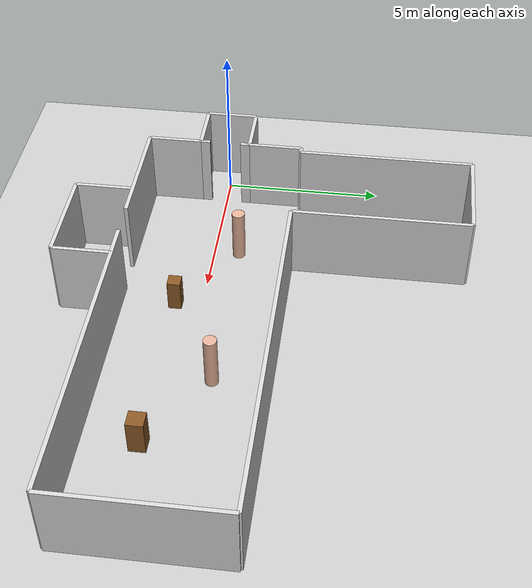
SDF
<?xml version="1.0" ?>
<sdf version="1.6">
  <world name="kku_f1">
    <include><uri>model://sun</uri></include>
    <include><uri>model://ground_plane</uri></include>
    <physics name="default_physics" default="0" type="ode">
      <max_step_size>0.001</max_step_size>
      <real_time_factor>1.0</real_time_factor>
      <real_time_update_rate>1000</real_time_update_rate>
    </physics>
    <scene>
      <ambient>0.4 0.4 0.4 1</ambient>
      <background>0.7 0.7 0.7 1</background>
      <shadows>true</shadows>
    </scene>
    <!-- 동적 장애물(보행자)을 set_entity_state 로 위치제어하기 위한 플러그인 -->
    <plugin name="gazebo_ros_state" filename="libgazebo_ros_state.so">
      <ros><namespace>/gazebo</namespace></ros>
      <update_rate>50.0</update_rate>
    </plugin>
    <model name="kku_f1_building">
      <static>true</static>
      <link name="walls">
        <collision name="f1_elev_n">
          <pose>0 0.8 1.2 0 0 0</pose>
          <geometry><box><size>1.6 0.12 2.4</size></box></geometry>
        </collision>
        <visual name="f1_elev_n_v">
          <pose>0 0.8 1.2 0 0 0</pose>
          <geometry><box><size>1.6 0.12 2.4</size></box></geometry>
          <material><ambient>0.7 0.7 0.7 1</ambient><diffuse>0.85 0.85 0.85 1</diffuse></material>
        </visual>
        <collision name="f1_elev_s">
          <pose>0 -0.8 1.2 0 0 0</pose>
          <geometry><box><size>1.6 0.12 2.4</size></box></geometry>
        </collision>
        <visual name="f1_elev_s_v">
          <pose>0 -0.8 1.2 0 0 0</pose>
          <geometry><box><size>1.6 0.12 2.4</size></box></geometry>
          <material><ambient>0.7 0.7 0.7 1</ambient><diffuse>0.85 0.85 0.85 1</diffuse></material>
        </visual>
        <collision name="f1_elev_w">
          <pose>-0.8 0 1.2 0 0 0</pose>
          <geometry><box><size>0.12 1.6 2.4</size></box></geometry>
        </collision>
        <visual name="f1_elev_w_v">
          <pose>-0.8 0 1.2 0 0 0</pose>
          <geometry><box><size>0.12 1.6 2.4</size></box></geometry>
          <material><ambient>0.7 0.7 0.7 1</ambient><diffuse>0.85 0.85 0.85 1</diffuse></material>
        </visual>
        <collision name="f1_elev_e_s">
          <pose>0.8 -0.65 1.2 0 0 0</pose>
          <geometry><box><size>0.12 0.3 2.4</size></box></geometry>
        </collision>
        <visual name="f1_elev_e_s_v">
          <pose>0.8 -0.65 1.2 0 0 0</pose>
          <geometry><box><size>0.12 0.3 2.4</size></box></geometry>
          <material><ambient>0.7 0.7 0.7 1</ambient><diffuse>0.85 0.85 0.85 1</diffuse></material>
        </visual>
        <collision name="f1_elev_e_n">
          <pose>0.8 0.65 1.2 0 0 0</pose>
          <geometry><box><size>0.12 0.3 2.4</size></box></geometry>
        </collision>
        <visual name="f1_elev_e_n_v">
          <pose>0.8 0.65 1.2 0 0 0</pose>
          <geometry><box><size>0.12 0.3 2.4</size></box></geometry>
          <material><ambient>0.7 0.7 0.7 1</ambient><diffuse>0.85 0.85 0.85 1</diffuse></material>
        </visual>
        <collision name="f1_shoulder_n">
          <pose>0.8 1.65 1.2 0 0 0</pose>
          <geometry><box><size>0.12 1.7 2.4</size></box></geometry>
        </collision>
        <visual name="f1_shoulder_n_v">
          <pose>0.8 1.65 1.2 0 0 0</pose>
          <geometry><box><size>0.12 1.7 2.4</size></box></geometry>
          <material><ambient>0.7 0.7 0.7 1</ambient><diffuse>0.85 0.85 0.85 1</diffuse></material>
        </visual>
        <collision name="f1_shoulder_s">
          <pose>0.8 -1.65 1.2 0 0 0</pose>
          <geometry><box><size>0.12 1.7 2.4</size></box></geometry>
        </collision>
        <visual name="f1_shoulder_s_v">
          <pose>0.8 -1.65 1.2 0 0 0</pose>
          <geometry><box><size>0.12 1.7 2.4</size></box></geometry>
          <material><ambient>0.7 0.7 0.7 1</ambient><diffuse>0.85 0.85 0.85 1</diffuse></material>
        </visual>
        <collision name="f1_rc_n_w">
          <pose>0.9 2.5 1.2 0 0 0</pose>
          <geometry><box><size>0.2 0.12 2.4</size></box></geometry>
        </collision>
        <visual name="f1_rc_n_w_v">
          <pose>0.9 2.5 1.2 0 0 0</pose>
          <geometry><box><size>0.2 0.12 2.4</size></box></geometry>
          <material><ambient>0.7 0.7 0.7 1</ambient><diffuse>0.85 0.85 0.85 1</diffuse></material>
        </visual>
        <collision name="f1_rc_n_e">
          <pose>9.5 2.5 1.2 0 0 0</pose>
          <geometry><box><size>11 0.12 2.4</size></box></geometry>
        </collision>
        <visual name="f1_rc_n_e_v">
          <pose>9.5 2.5 1.2 0 0 0</pose>
          <geometry><box><size>11 0.12 2.4</size></box></geometry>
          <material><ambient>0.7 0.7 0.7 1</ambient><diffuse>0.85 0.85 0.85 1</diffuse></material>
        </visual>
        <collision name="f1_rc_s_w">
          <pose>2.65 -2.5 1.2 0 0 0</pose>
          <geometry><box><size>3.7 0.12 2.4</size></box></geometry>
        </collision>
        <visual name="f1_rc_s_w_v">
          <pose>2.65 -2.5 1.2 0 0 0</pose>
          <geometry><box><size>3.7 0.12 2.4</size></box></geometry>
          <material><ambient>0.7 0.7 0.7 1</ambient><diffuse>0.85 0.85 0.85 1</diffuse></material>
        </visual>
        <collision name="f1_rc_s_e">
          <pose>10.25 -2.5 1.2 0 0 0</pose>
          <geometry><box><size>9.5 0.12 2.4</size></box></geometry>
        </collision>
        <visual name="f1_rc_s_e_v">
          <pose>10.25 -2.5 1.2 0 0 0</pose>
          <geometry><box><size>9.5 0.12 2.4</size></box></geometry>
          <material><ambient>0.7 0.7 0.7 1</ambient><diffuse>0.85 0.85 0.85 1</diffuse></material>
        </visual>
        <collision name="f1_rc_end">
          <pose>15 0 1.2 0 0 0</pose>
          <geometry><box><size>0.12 5 2.4</size></box></geometry>
        </collision>
        <visual name="f1_rc_end_v">
          <pose>15 0 1.2 0 0 0</pose>
          <geometry><box><size>0.12 5 2.4</size></box></geometry>
          <material><ambient>0.7 0.7 0.7 1</ambient><diffuse>0.85 0.85 0.85 1</diffuse></material>
        </visual>
        <collision name="f1_bc_w">
          <pose>1 5.25 1.2 0 0 0</pose>
          <geometry><box><size>0.12 5.5 2.4</size></box></geometry>
        </collision>
        <visual name="f1_bc_w_v">
          <pose>1 5.25 1.2 0 0 0</pose>
          <geometry><box><size>0.12 5.5 2.4</size></box></geometry>
          <material><ambient>0.7 0.7 0.7 1</ambient><diffuse>0.85 0.85 0.85 1</diffuse></material>
        </visual>
        <collision name="f1_bc_e">
          <pose>4 5.25 1.2 0 0 0</pose>
          <geometry><box><size>0.12 5.5 2.4</size></box></geometry>
        </collision>
        <visual name="f1_bc_e_v">
          <pose>4 5.25 1.2 0 0 0</pose>
          <geometry><box><size>0.12 5.5 2.4</size></box></geometry>
          <material><ambient>0.7 0.7 0.7 1</ambient><diffuse>0.85 0.85 0.85 1</diffuse></material>
        </visual>
        <collision name="f1_bc_end">
          <pose>2.5 8 1.2 0 0 0</pose>
          <geometry><box><size>3 0.12 2.4</size></box></geometry>
        </collision>
        <visual name="f1_bc_end_v">
          <pose>2.5 8 1.2 0 0 0</pose>
          <geometry><box><size>3 0.12 2.4</size></box></geometry>
          <material><ambient>0.7 0.7 0.7 1</ambient><diffuse>0.85 0.85 0.85 1</diffuse></material>
        </visual>
        <collision name="f1_pz_s">
          <pose>5 -4.3 1.2 0 0 0</pose>
          <geometry><box><size>3 0.12 2.4</size></box></geometry>
        </collision>
        <visual name="f1_pz_s_v">
          <pose>5 -4.3 1.2 0 0 0</pose>
          <geometry><box><size>3 0.12 2.4</size></box></geometry>
          <material><ambient>0.7 0.7 0.7 1</ambient><diffuse>0.85 0.85 0.85 1</diffuse></material>
        </visual>
        <collision name="f1_pz_e">
          <pose>6.5 -3.4 1.2 0 0 0</pose>
          <geometry><box><size>0.12 1.8 2.4</size></box></geometry>
        </collision>
        <visual name="f1_pz_e_v">
          <pose>6.5 -3.4 1.2 0 0 0</pose>
          <geometry><box><size>0.12 1.8 2.4</size></box></geometry>
          <material><ambient>0.7 0.7 0.7 1</ambient><diffuse>0.85 0.85 0.85 1</diffuse></material>
        </visual>
        <collision name="f1_pz_w">
          <pose>3.5 -3.4 1.2 0 0 0</pose>
          <geometry><box><size>0.12 1.8 2.4</size></box></geometry>
        </collision>
        <visual name="f1_pz_w_v">
          <pose>3.5 -3.4 1.2 0 0 0</pose>
          <geometry><box><size>0.12 1.8 2.4</size></box></geometry>
          <material><ambient>0.7 0.7 0.7 1</ambient><diffuse>0.85 0.85 0.85 1</diffuse></material>
        </visual>
      </link>
    </model>
    <model name="obstacle_person_1">
      <static>true</static>
      <pose>3.5 0.8 0 0 0 0</pose>
      <link name="body">
        <collision name="c"><pose>0 0 0.85 0 0 0</pose><geometry><cylinder><radius>0.2</radius><length>1.7</length></cylinder></geometry></collision>
        <visual name="v"><pose>0 0 0.85 0 0 0</pose><geometry><cylinder><radius>0.2</radius><length>1.7</length></cylinder></geometry><material><ambient>0.8 0.6 0.5 1</ambient><diffuse>0.9 0.7 0.6 1</diffuse></material></visual>
      </link>
    </model>
    <model name="obstacle_box_1">
      <static>true</static>
      <pose>6 -0.8 0 0 0 0</pose>
      <link name="body">
        <collision name="c"><pose>0 0 0.5 0 0 0</pose><geometry><box><size>0.4 0.4 1</size></box></geometry></collision>
        <visual name="v"><pose>0 0 0.5 0 0 0</pose><geometry><box><size>0.4 0.4 1</size></box></geometry><material><ambient>0.4 0.25 0.1 1</ambient><diffuse>0.55 0.35 0.15 1</diffuse></material></visual>
      </link>
    </model>
    <model name="obstacle_person_2">
      <static>true</static>
      <pose>9 0.8 0 0 0 0</pose>
      <link name="body">
        <collision name="c"><pose>0 0 0.85 0 0 0</pose><geometry><cylinder><radius>0.2</radius><length>1.7</length></cylinder></geometry></collision>
        <visual name="v"><pose>0 0 0.85 0 0 0</pose><geometry><cylinder><radius>0.2</radius><length>1.7</length></cylinder></geometry><material><ambient>0.8 0.6 0.5 1</ambient><diffuse>0.9 0.7 0.6 1</diffuse></material></visual>
      </link>
    </model>
    <model name="obstacle_box_2">
      <static>true</static>
      <pose>11.5 -0.8 0 0 0 0</pose>
      <link name="body">
        <collision name="c"><pose>0 0 0.55 0 0 0</pose><geometry><box><size>0.5 0.5 1.1</size></box></geometry></collision>
        <visual name="v"><pose>0 0 0.55 0 0 0</pose><geometry><box><size>0.5 0.5 1.1</size></box></geometry><material><ambient>0.4 0.25 0.1 1</ambient><diffuse>0.55 0.35 0.15 1</diffuse></material></visual>
      </link>
    </model>
    <model name="parcel_box">
      <static>true</static>
      <pose>5 -3.9 0 0 0 0</pose>
      <link name="body">
        <collision name="c"><pose>0 0 0.15 0 0 0</pose><geometry><box><size>0.45 0.6 0.3</size></box></geometry></collision>
        <visual name="v"><pose>0 0 0.15 0 0 0</pose><geometry><box><size>0.45 0.6 0.3</size></box></geometry><material><ambient>0.6 0.45 0.2 1</ambient><diffuse>0.72 0.55 0.28 1</diffuse></material></visual>
      </link>
    </model>
  </world>
</sdf>
